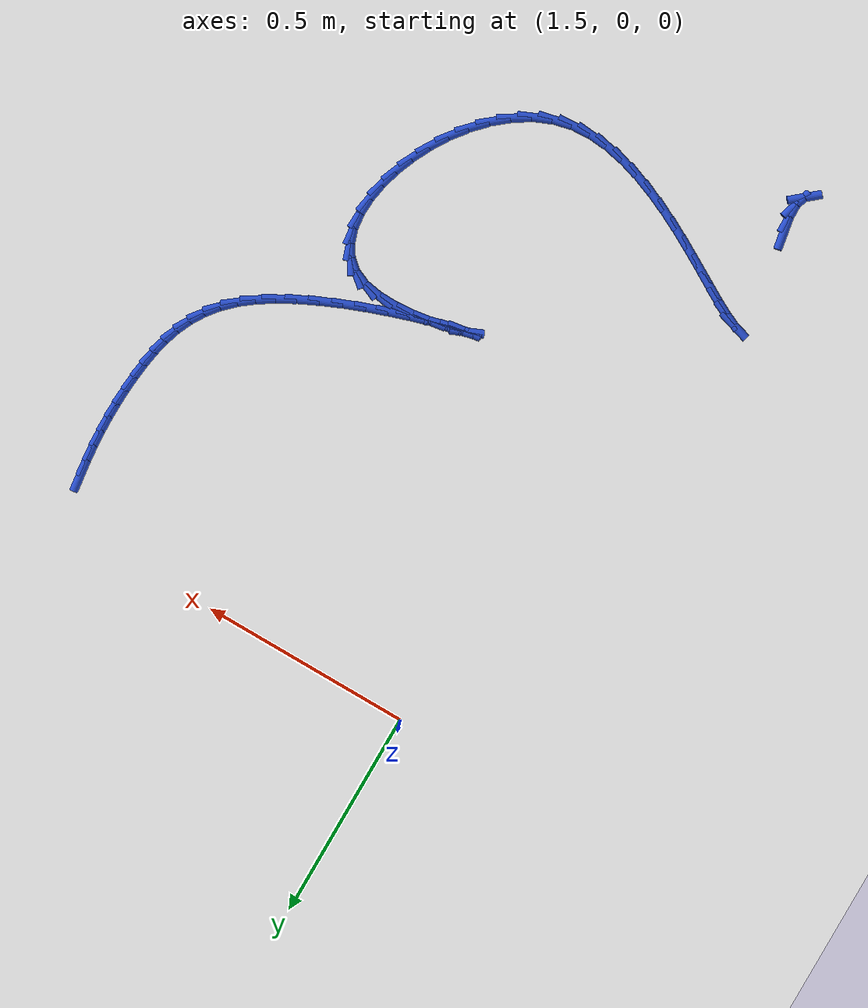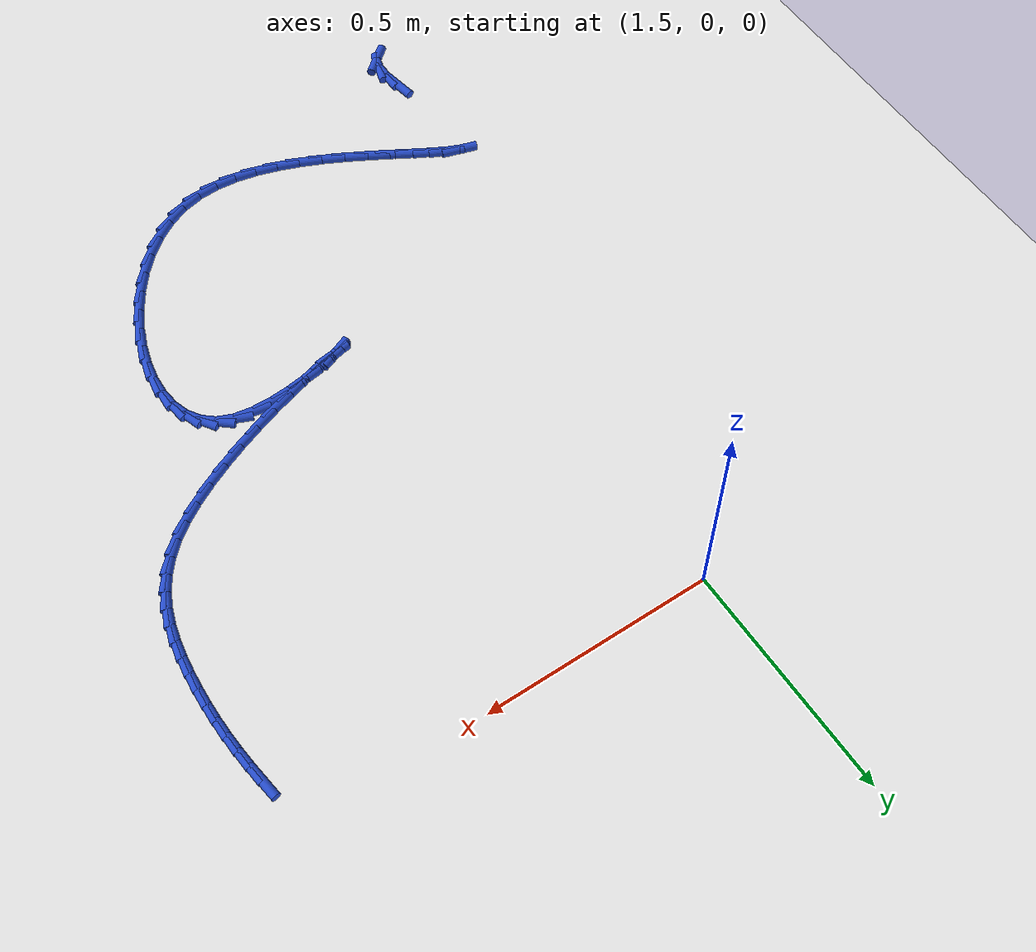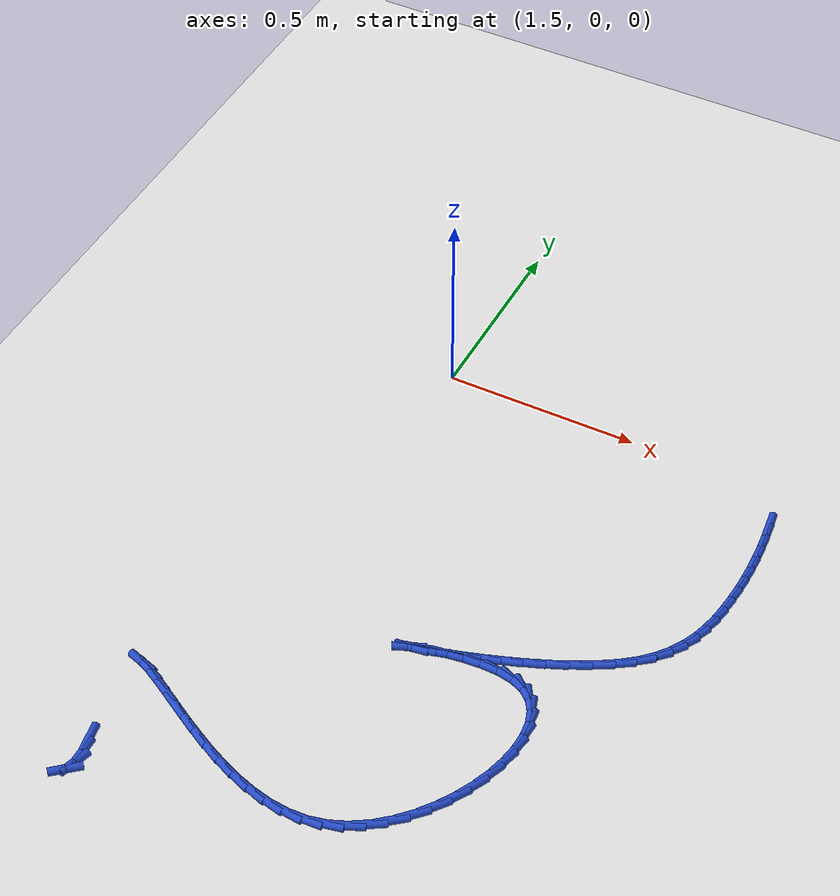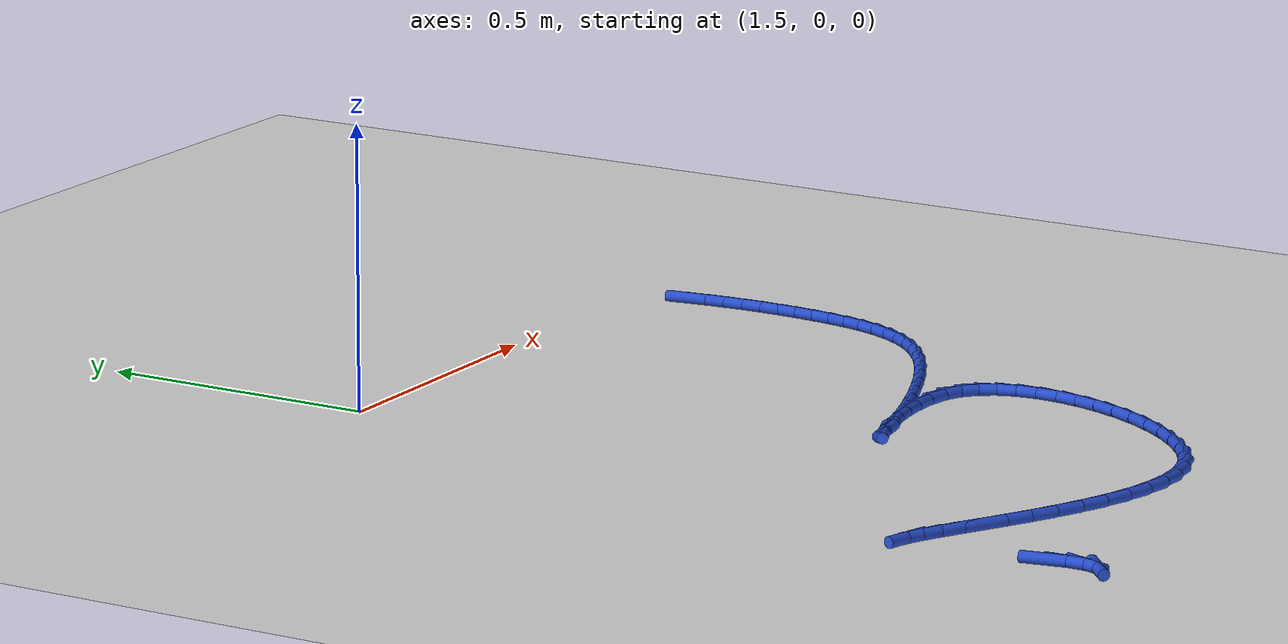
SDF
<sdf version="1.6">
 <world name="default">
  <model name="ground_plane">
   <static>1</static>
   <link name="link">
    <collision name="collision">
     <geometry><plane><normal>0 0 1</normal><size>100 100</size></plane></geometry>
     <surface><friction><ode><mu>100</mu><mu2>50</mu2></ode></friction></surface>
    </collision>
    <visual name="visual">
     <cast_shadows>0</cast_shadows>
     <geometry><plane><normal>0 0 1</normal><size>100 100</size></plane></geometry>
     <material>
      <script><uri>file://media/materials/scripts/gazebo.material</uri><name>Gazebo/WhiteGlow</name></script>
     </material>
    </visual>
   </link>
  </model>
  <model name="line">
   <link name="link_136">
    <pose>2.40849479310458 -0.11308525664974688 0.01 0 1.57 -1.4417393234752054</pose>
    <collision name="collision">
     <geometry><cylinder><radius>0.01</radius><length>0.08</length></cylinder></geometry>
    </collision>
    <visual name="visual">
     <material>
      <script><name>Gazebo/Blue</name><uri>file://media/materials/scripts/gazebo.material</uri></script>
     </material>
     <geometry><cylinder><radius>0.01</radius><length>0.08</length></cylinder></geometry>
    </visual>
   </link>
   <link name="link_137">
    <pose>2.4132801595486213 -0.14995864501461673 0.01 0 1.57 -1.4740188481486598</pose>
    <collision name="collision">
     <geometry><cylinder><radius>0.01</radius><length>0.08</length></cylinder></geometry>
    </collision>
    <visual name="visual">
     <material>
      <script><name>Gazebo/Blue</name><uri>file://media/materials/scripts/gazebo.material</uri></script>
     </material>
     <geometry><cylinder><radius>0.01</radius><length>0.08</length></cylinder></geometry>
    </visual>
   </link>
   <link name="link_138">
    <pose>2.416869411921617 -0.186930468597837 0.01 0 1.57 -1.5069359076529771</pose>
    <collision name="collision">
     <geometry><cylinder><radius>0.01</radius><length>0.08</length></cylinder></geometry>
    </collision>
    <visual name="visual">
     <material>
      <script><name>Gazebo/Blue</name><uri>file://media/materials/scripts/gazebo.material</uri></script>
     </material>
     <geometry><cylinder><radius>0.01</radius><length>0.08</length></cylinder></geometry>
    </visual>
   </link>
   <link name="link_139">
    <pose>2.4192343274577577 -0.22391268487926408 0.01 0 1.57 -1.5406640325195655</pose>
    <collision name="collision">
     <geometry><cylinder><radius>0.01</radius><length>0.08</length></cylinder></geometry>
    </collision>
    <visual name="visual">
     <material>
      <script><name>Gazebo/Blue</name><uri>file://media/materials/scripts/gazebo.material</uri></script>
     </material>
     <geometry><cylinder><radius>0.01</radius><length>0.08</length></cylinder></geometry>
    </visual>
   </link>
   <link name="link_140">
    <pose>2.420346683391234 -0.26081725133875505 0.01 0 1.57 1.5662119387557185</pose>
    <collision name="collision">
     <geometry><cylinder><radius>0.01</radius><length>0.08</length></cylinder></geometry>
    </collision>
    <visual name="visual">
     <material>
      <script><name>Gazebo/Blue</name><uri>file://media/materials/scripts/gazebo.material</uri></script>
     </material>
     <geometry><cylinder><radius>0.01</radius><length>0.08</length></cylinder></geometry>
    </visual>
   </link>
   <link name="link_141">
    <pose>2.420178256956238 -0.29755612545616517 0.01 0 1.57 1.530324374540711</pose>
    <collision name="collision">
     <geometry><cylinder><radius>0.01</radius><length>0.08</length></cylinder></geometry>
    </collision>
    <visual name="visual">
     <material>
      <script><name>Gazebo/Blue</name><uri>file://media/materials/scripts/gazebo.material</uri></script>
     </material>
     <geometry><cylinder><radius>0.01</radius><length>0.08</length></cylinder></geometry>
    </visual>
   </link>
   <link name="link_142">
    <pose>2.418700825386959 -0.33404126471135137 0.01 0 1.57 1.4930783141669577</pose>
    <collision name="collision">
     <geometry><cylinder><radius>0.01</radius><length>0.08</length></cylinder></geometry>
    </collision>
    <visual name="visual">
     <material>
      <script><name>Gazebo/Blue</name><uri>file://media/materials/scripts/gazebo.material</uri></script>
     </material>
     <geometry><cylinder><radius>0.01</radius><length>0.08</length></cylinder></geometry>
    </visual>
   </link>
   <link name="link_143">
    <pose>2.4158861659175894 -0.37018462658417023 0.01 0 1.57 1.4541572576893582</pose>
    <collision name="collision">
     <geometry><cylinder><radius>0.01</radius><length>0.08</length></cylinder></geometry>
    </collision>
    <visual name="visual">
     <material>
      <script><name>Gazebo/Blue</name><uri>file://media/materials/scripts/gazebo.material</uri></script>
     </material>
     <geometry><cylinder><radius>0.01</radius><length>0.08</length></cylinder></geometry>
    </visual>
   </link>
   <link name="link_144">
    <pose>2.411701611229567 -0.4058978827662627 0.01 0 1.57 1.4064403037259792</pose>
    <collision name="collision">
     <geometry><cylinder><radius>0.01</radius><length>0.08</length></cylinder></geometry>
    </collision>
    <visual name="visual">
     <material>
      <script><name>Gazebo/Blue</name><uri>file://media/materials/scripts/gazebo.material</uri></script>
     </material>
     <geometry><cylinder><radius>0.01</radius><length>0.08</length></cylinder></geometry>
    </visual>
   </link>
   <link name="link_145">
    <pose>2.4058671141679975 -0.4410767982324681 0.01 0 1.57 1.339274007909746</pose>
    <collision name="collision">
     <geometry><cylinder><radius>0.01</radius><length>0.08</length></cylinder></geometry>
    </collision>
    <visual name="visual">
     <material>
      <script><name>Gazebo/Blue</name><uri>file://media/materials/scripts/gazebo.material</uri></script>
     </material>
     <geometry><cylinder><radius>0.01</radius><length>0.08</length></cylinder></geometry>
    </visual>
   </link>
   <link name="link_146">
    <pose>2.397729889279376 -0.4755931705937341 0.01 0 1.57 1.2521883463655463</pose>
    <collision name="collision">
     <geometry><cylinder><radius>0.01</radius><length>0.08</length></cylinder></geometry>
    </collision>
    <visual name="visual">
     <material>
      <script><name>Gazebo/Blue</name><uri>file://media/materials/scripts/gazebo.material</uri></script>
     </material>
     <geometry><cylinder><radius>0.01</radius><length>0.08</length></cylinder></geometry>
    </visual>
   </link>
   <link name="link_147">
    <pose>2.386606306428112 -0.5093168141238419 0.01 0 1.57 1.1470999088439977</pose>
    <collision name="collision">
     <geometry><cylinder><radius>0.01</radius><length>0.08</length></cylinder></geometry>
    </collision>
    <visual name="visual">
     <material>
      <script><name>Gazebo/Blue</name><uri>file://media/materials/scripts/gazebo.material</uri></script>
     </material>
     <geometry><cylinder><radius>0.01</radius><length>0.08</length></cylinder></geometry>
    </visual>
   </link>
   <link name="link_148">
    <pose>2.371812735478616 -0.5421175430965762 0.01 0 1.57 1.0280960435964226</pose>
    <collision name="collision">
     <geometry><cylinder><radius>0.01</radius><length>0.08</length></cylinder></geometry>
    </collision>
    <visual name="visual">
     <material>
      <script><name>Gazebo/Blue</name><uri>file://media/materials/scripts/gazebo.material</uri></script>
     </material>
     <geometry><cylinder><radius>0.01</radius><length>0.08</length></cylinder></geometry>
    </visual>
   </link>
   <link name="link_149">
    <pose>2.3526655462952983 -0.5738651717857203 0.01 0 1.57 0.9014054930989835</pose>
    <collision name="collision">
     <geometry><cylinder><radius>0.01</radius><length>0.08</length></cylinder></geometry>
    </collision>
    <visual name="visual">
     <material>
      <script><name>Gazebo/Blue</name><uri>file://media/materials/scripts/gazebo.material</uri></script>
     </material>
     <geometry><cylinder><radius>0.01</radius><length>0.08</length></cylinder></geometry>
    </visual>
   </link>
   <link name="link_150">
    <pose>2.3284811087425683 -0.6044295144650577 0.01 0 1.57 0.7743356110193891</pose>
    <collision name="collision">
     <geometry><cylinder><radius>0.01</radius><length>0.08</length></cylinder></geometry>
    </collision>
    <visual name="visual">
     <material>
      <script><name>Gazebo/Blue</name><uri>file://media/materials/scripts/gazebo.material</uri></script>
     </material>
     <geometry><cylinder><radius>0.01</radius><length>0.08</length></cylinder></geometry>
    </visual>
   </link>
   <link name="link_151">
    <pose>2.2985757926848387 -0.6336803854083722 0.01 0 1.57 0.656129676537569</pose>
    <collision name="collision">
     <geometry><cylinder><radius>0.01</radius><length>0.08</length></cylinder></geometry>
    </collision>
    <visual name="visual">
     <material>
      <script><name>Gazebo/Blue</name><uri>file://media/materials/scripts/gazebo.material</uri></script>
     </material>
     <geometry><cylinder><radius>0.01</radius><length>0.08</length></cylinder></geometry>
    </visual>
   </link>
   <link name="link_152">
    <pose>2.262457754523515 -0.6614884534254639 0.01 0 1.57 0.5640164784935234</pose>
    <collision name="collision">
     <geometry><cylinder><radius>0.01</radius><length>0.08</length></cylinder></geometry>
    </collision>
    <visual name="visual">
     <material>
      <script><name>Gazebo/Blue</name><uri>file://media/materials/scripts/gazebo.material</uri></script>
     </material>
     <geometry><cylinder><radius>0.01</radius><length>0.08</length></cylinder></geometry>
    </visual>
   </link>
   <link name="link_153">
    <pose>2.2209724602161853 -0.687730345925725 0.01 0 1.57 0.49544909977029766</pose>
    <collision name="collision">
     <geometry><cylinder><radius>0.01</radius><length>0.08</length></cylinder></geometry>
    </collision>
    <visual name="visual">
     <material>
      <script><name>Gazebo/Blue</name><uri>file://media/materials/scripts/gazebo.material</uri></script>
     </material>
     <geometry><cylinder><radius>0.01</radius><length>0.08</length></cylinder></geometry>
    </visual>
   </link>
   <link name="link_154">
    <pose>2.1755347884342076 -0.7122852274292342 0.01 0 1.57 0.4427650380241393</pose>
    <collision name="collision">
     <geometry><cylinder><radius>0.01</radius><length>0.08</length></cylinder></geometry>
    </collision>
    <visual name="visual">
     <material>
      <script><name>Gazebo/Blue</name><uri>file://media/materials/scripts/gazebo.material</uri></script>
     </material>
     <geometry><cylinder><radius>0.01</radius><length>0.08</length></cylinder></geometry>
    </visual>
   </link>
   <link name="link_155">
    <pose>2.1275617205263426 -0.7350322718248894 0.01 0 1.57 0.40108536078279394</pose>
    <collision name="collision">
     <geometry><cylinder><radius>0.01</radius><length>0.08</length></cylinder></geometry>
    </collision>
    <visual name="visual">
     <material>
      <script><name>Gazebo/Blue</name><uri>file://media/materials/scripts/gazebo.material</uri></script>
     </material>
     <geometry><cylinder><radius>0.01</radius><length>0.08</length></cylinder></geometry>
    </visual>
   </link>
   <link name="link_156">
    <pose>2.078470237841352 -0.755850653001587 0.01 0 1.57 0.36721642578227237</pose>
    <collision name="collision">
     <geometry><cylinder><radius>0.01</radius><length>0.08</length></cylinder></geometry>
    </collision>
    <visual name="visual">
     <material>
      <script><name>Gazebo/Blue</name><uri>file://media/materials/scripts/gazebo.material</uri></script>
     </material>
     <geometry><cylinder><radius>0.01</radius><length>0.08</length></cylinder></geometry>
    </visual>
   </link>
   <link name="link_157">
    <pose>2.0296773217279966 -0.7746195448482263 0.01 0 1.57 0.33897212539769694</pose>
    <collision name="collision">
     <geometry><cylinder><radius>0.01</radius><length>0.08</length></cylinder></geometry>
    </collision>
    <visual name="visual">
     <material>
      <script><name>Gazebo/Blue</name><uri>file://media/materials/scripts/gazebo.material</uri></script>
     </material>
     <geometry><cylinder><radius>0.01</radius><length>0.08</length></cylinder></geometry>
    </visual>
   </link>
   <link name="link_158">
    <pose>1.982599953535036 -0.7912181212537044 0.01 0 1.57 0.3147538113883472</pose>
    <collision name="collision">
     <geometry><cylinder><radius>0.01</radius><length>0.08</length></cylinder></geometry>
    </collision>
    <visual name="visual">
     <material>
      <script><name>Gazebo/Blue</name><uri>file://media/materials/scripts/gazebo.material</uri></script>
     </material>
     <geometry><cylinder><radius>0.01</radius><length>0.08</length></cylinder></geometry>
    </visual>
   </link>
   <link name="link_159">
    <pose>1.9386551146112307 -0.8055255561069198 0.01 0 1.57 0.2932459359099634</pose>
    <collision name="collision">
     <geometry><cylinder><radius>0.01</radius><length>0.08</length></cylinder></geometry>
    </collision>
    <visual name="visual">
     <material>
      <script><name>Gazebo/Blue</name><uri>file://media/materials/scripts/gazebo.material</uri></script>
     </material>
     <geometry><cylinder><radius>0.01</radius><length>0.08</length></cylinder></geometry>
    </visual>
   </link>
   <link name="link_160">
    <pose>1.8992597863053418 -0.8174210232967702 0.01 0 1.57 0.27308080329887846</pose>
    <collision name="collision">
     <geometry><cylinder><radius>0.01</radius><length>0.08</length></cylinder></geometry>
    </collision>
    <visual name="visual">
     <material>
      <script><name>Gazebo/Blue</name><uri>file://media/materials/scripts/gazebo.material</uri></script>
     </material>
     <geometry><cylinder><radius>0.01</radius><length>0.08</length></cylinder></geometry>
    </visual>
   </link>
   <link name="link_161">
    <pose>1.8658309499661294 -0.8267836967121539 0.01 0 1.57 0.2521103619420087</pose>
    <collision name="collision">
     <geometry><cylinder><radius>0.01</radius><length>0.08</length></cylinder></geometry>
    </collision>
    <visual name="visual">
     <material>
      <script><name>Gazebo/Blue</name><uri>file://media/materials/scripts/gazebo.material</uri></script>
     </material>
     <geometry><cylinder><radius>0.01</radius><length>0.08</length></cylinder></geometry>
    </visual>
   </link>
   <link name="link_162">
    <pose>1.839785586942354 -0.833492750241968 0.01 0 1.57 0.22432064210947966</pose>
    <collision name="collision">
     <geometry><cylinder><radius>0.01</radius><length>0.08</length></cylinder></geometry>
    </collision>
    <visual name="visual">
     <material>
      <script><name>Gazebo/Blue</name><uri>file://media/materials/scripts/gazebo.material</uri></script>
     </material>
     <geometry><cylinder><radius>0.01</radius><length>0.08</length></cylinder></geometry>
    </visual>
   </link>
   <link name="link_163">
    <pose>1.822540678582777 -0.8374273577751112 0.01 0 1.57 0.14683166573517342</pose>
    <collision name="collision">
     <geometry><cylinder><radius>0.01</radius><length>0.08</length></cylinder></geometry>
    </collision>
    <visual name="visual">
     <material>
      <script><name>Gazebo/Blue</name><uri>file://media/materials/scripts/gazebo.material</uri></script>
     </material>
     <geometry><cylinder><radius>0.01</radius><length>0.08</length></cylinder></geometry>
    </visual>
   </link>
   <link name="link_164">
    <pose>1.8155132062361583 -0.838466693200481 0.01 0 1.57 0.4053240802145313</pose>
    <collision name="collision">
     <geometry><cylinder><radius>0.01</radius><length>0.08</length></cylinder></geometry>
    </collision>
    <visual name="visual">
     <material>
      <script><name>Gazebo/Blue</name><uri>file://media/materials/scripts/gazebo.material</uri></script>
     </material>
     <geometry><cylinder><radius>0.01</radius><length>0.08</length></cylinder></geometry>
    </visual>
   </link>
   <link name="link_165">
    <pose>1.8201201512512588 -0.8364899304069753 0.01 0 1.57 0.28007449777799753</pose>
    <collision name="collision">
     <geometry><cylinder><radius>0.01</radius><length>0.08</length></cylinder></geometry>
    </collision>
    <visual name="visual">
     <material>
      <script><name>Gazebo/Blue</name><uri>file://media/materials/scripts/gazebo.material</uri></script>
     </material>
     <geometry><cylinder><radius>0.01</radius><length>0.08</length></cylinder></geometry>
    </visual>
   </link>
   <link name="link_166">
    <pose>1.837416055969233 -0.8315150231079764 0.01 0 1.57 0.23936216308619696</pose>
    <collision name="collision">
     <geometry><cylinder><radius>0.01</radius><length>0.08</length></cylinder></geometry>
    </collision>
    <visual name="visual">
     <material>
      <script><name>Gazebo/Blue</name><uri>file://media/materials/scripts/gazebo.material</uri></script>
     </material>
     <geometry><cylinder><radius>0.01</radius><length>0.08</length></cylinder></geometry>
    </visual>
   </link>
   <link name="link_167">
    <pose>1.8657174186298116 -0.8246083366719351 0.01 0 1.57 0.1978886102756576</pose>
    <collision name="collision">
     <geometry><cylinder><radius>0.01</radius><length>0.08</length></cylinder></geometry>
    </collision>
    <visual name="visual">
     <material>
      <script><name>Gazebo/Blue</name><uri>file://media/materials/scripts/gazebo.material</uri></script>
     </material>
     <geometry><cylinder><radius>0.01</radius><length>0.08</length></cylinder></geometry>
    </visual>
   </link>
   <link name="link_168">
    <pose>1.902089905702884 -0.8173151866074223 0.01 0 1.57 0.14668382087086881</pose>
    <collision name="collision">
     <geometry><cylinder><radius>0.01</radius><length>0.08</length></cylinder></geometry>
    </collision>
    <visual name="visual">
     <material>
      <script><name>Gazebo/Blue</name><uri>file://media/materials/scripts/gazebo.material</uri></script>
     </material>
     <geometry><cylinder><radius>0.01</radius><length>0.08</length></cylinder></geometry>
    </visual>
   </link>
   <link name="link_169">
    <pose>1.9435927589914221 -0.811183348462158 0.01 0 1.57 0.07817767039469287</pose>
    <collision name="collision">
     <geometry><cylinder><radius>0.01</radius><length>0.08</length></cylinder></geometry>
    </collision>
    <visual name="visual">
     <material>
      <script><name>Gazebo/Blue</name><uri>file://media/materials/scripts/gazebo.material</uri></script>
     </material>
     <geometry><cylinder><radius>0.01</radius><length>0.08</length></cylinder></geometry>
    </visual>
   </link>
   <link name="link_170">
    <pose>1.987285220298392 -0.8077605977838607 0.01 0 1.57 -0.019422030484569256</pose>
    <collision name="collision">
     <geometry><cylinder><radius>0.01</radius><length>0.08</length></cylinder></geometry>
    </collision>
    <visual name="visual">
     <material>
      <script><name>Gazebo/Blue</name><uri>file://media/materials/scripts/gazebo.material</uri></script>
     </material>
     <geometry><cylinder><radius>0.01</radius><length>0.08</length></cylinder></geometry>
    </visual>
   </link>
   <link name="link_171">
    <pose>2.0302265314267642 -0.8085947101202504 0.01 0 1.57 -0.1675568427343048</pose>
    <collision name="collision">
     <geometry><cylinder><radius>0.01</radius><length>0.08</length></cylinder></geometry>
    </collision>
    <visual name="visual">
     <material>
      <script><name>Gazebo/Blue</name><uri>file://media/materials/scripts/gazebo.material</uri></script>
     </material>
     <geometry><cylinder><radius>0.01</radius><length>0.08</length></cylinder></geometry>
    </visual>
   </link>
   <link name="link_172">
    <pose>2.0694759341795077 -0.8152334610190464 0.01 0 1.57 -0.40176370715294796</pose>
    <collision name="collision">
     <geometry><cylinder><radius>0.01</radius><length>0.08</length></cylinder></geometry>
    </collision>
    <visual name="visual">
     <material>
      <script><name>Gazebo/Blue</name><uri>file://media/materials/scripts/gazebo.material</uri></script>
     </material>
     <geometry><cylinder><radius>0.01</radius><length>0.08</length></cylinder></geometry>
    </visual>
   </link>
   <link name="link_173">
    <pose>2.1022037192755905 -0.8291386377810878 0.01 0 1.57 -0.7023472451292961</pose>
    <collision name="collision">
     <geometry><cylinder><radius>0.01</radius><length>0.08</length></cylinder></geometry>
    </collision>
    <visual name="visual">
     <material>
      <script><name>Gazebo/Blue</name><uri>file://media/materials/scripts/gazebo.material</uri></script>
     </material>
     <geometry><cylinder><radius>0.01</radius><length>0.08</length></cylinder></geometry>
    </visual>
   </link>
   <link name="link_174">
    <pose>2.127338552550745 -0.8504104692238011 0.01 0 1.57 -0.9969084217736123</pose>
    <collision name="collision">
     <geometry><cylinder><radius>0.01</radius><length>0.08</length></cylinder></geometry>
    </collision>
    <visual name="visual">
     <material>
      <script><name>Gazebo/Blue</name><uri>file://media/materials/scripts/gazebo.material</uri></script>
     </material>
     <geometry><cylinder><radius>0.01</radius><length>0.08</length></cylinder></geometry>
    </visual>
   </link>
   <link name="link_175">
    <pose>2.1452139573781293 -0.878061364119954 0.01 0 1.57 -1.2494621574896874</pose>
    <collision name="collision">
     <geometry><cylinder><radius>0.01</radius><length>0.08</length></cylinder></geometry>
    </collision>
    <visual name="visual">
     <material>
      <script><name>Gazebo/Blue</name><uri>file://media/materials/scripts/gazebo.material</uri></script>
     </material>
     <geometry><cylinder><radius>0.01</radius><length>0.08</length></cylinder></geometry>
    </visual>
   </link>
   <link name="link_176">
    <pose>2.1562026840418076 -0.911073356760315 0.01 0 1.57 -1.4515736753504909</pose>
    <collision name="collision">
     <geometry><cylinder><radius>0.01</radius><length>0.08</length></cylinder></geometry>
    </collision>
    <visual name="visual">
     <material>
      <script><name>Gazebo/Blue</name><uri>file://media/materials/scripts/gazebo.material</uri></script>
     </material>
     <geometry><cylinder><radius>0.01</radius><length>0.08</length></cylinder></geometry>
    </visual>
   </link>
   <link name="link_177">
    <pose>2.1606774828258453 -0.9484284814356537 0.01 0 1.57 1.5298564103494536</pose>
    <collision name="collision">
     <geometry><cylinder><radius>0.01</radius><length>0.08</length></cylinder></geometry>
    </collision>
    <visual name="visual">
     <material>
      <script><name>Gazebo/Blue</name><uri>file://media/materials/scripts/gazebo.material</uri></script>
     </material>
     <geometry><cylinder><radius>0.01</radius><length>0.08</length></cylinder></geometry>
    </visual>
   </link>
   <link name="link_178">
    <pose>2.159011104014308 -0.98910877243674 0.01 0 1.57 1.3995377366692345</pose>
    <collision name="collision">
     <geometry><cylinder><radius>0.01</radius><length>0.08</length></cylinder></geometry>
    </collision>
    <visual name="visual">
     <material>
      <script><name>Gazebo/Blue</name><uri>file://media/materials/scripts/gazebo.material</uri></script>
     </material>
     <geometry><cylinder><radius>0.01</radius><length>0.08</length></cylinder></geometry>
    </visual>
   </link>
   <link name="link_179">
    <pose>2.1515762978912605 -1.032096264054343 0.01 0 1.57 1.2887424055797028</pose>
    <collision name="collision">
     <geometry><cylinder><radius>0.01</radius><length>0.08</length></cylinder></geometry>
    </collision>
    <visual name="visual">
     <material>
      <script><name>Gazebo/Blue</name><uri>file://media/materials/scripts/gazebo.material</uri></script>
     </material>
     <geometry><cylinder><radius>0.01</radius><length>0.08</length></cylinder></geometry>
    </visual>
   </link>
   <link name="link_180">
    <pose>2.1387458147407687 -1.0763729905792323 0.01 0 1.57 1.1896280803943606</pose>
    <collision name="collision">
     <geometry><cylinder><radius>0.01</radius><length>0.08</length></cylinder></geometry>
    </collision>
    <visual name="visual">
     <material>
      <script><name>Gazebo/Blue</name><uri>file://media/materials/scripts/gazebo.material</uri></script>
     </material>
     <geometry><cylinder><radius>0.01</radius><length>0.08</length></cylinder></geometry>
    </visual>
   </link>
   <link name="link_181">
    <pose>2.120892404846897 -1.1209209863021783 0.01 0 1.57 1.0961972413814294</pose>
    <collision name="collision">
     <geometry><cylinder><radius>0.01</radius><length>0.08</length></cylinder></geometry>
    </collision>
    <visual name="visual">
     <material>
      <script><name>Gazebo/Blue</name><uri>file://media/materials/scripts/gazebo.material</uri></script>
     </material>
     <geometry><cylinder><radius>0.01</radius><length>0.08</length></cylinder></geometry>
    </visual>
   </link>
   <link name="link_182">
    <pose>2.098388818493711 -1.1647222855139479 0.01 0 1.57 1.0035521158189777</pose>
    <collision name="collision">
     <geometry><cylinder><radius>0.01</radius><length>0.08</length></cylinder></geometry>
    </collision>
    <visual name="visual">
     <material>
      <script><name>Gazebo/Blue</name><uri>file://media/materials/scripts/gazebo.material</uri></script>
     </material>
     <geometry><cylinder><radius>0.01</radius><length>0.08</length></cylinder></geometry>
    </visual>
   </link>
   <link name="link_183">
    <pose>2.0716078059652765 -1.2067589225053124 0.01 0 1.57 0.9073008359440752</pose>
    <collision name="collision">
     <geometry><cylinder><radius>0.01</radius><length>0.08</length></cylinder></geometry>
    </collision>
    <visual name="visual">
     <material>
      <script><name>Gazebo/Blue</name><uri>file://media/materials/scripts/gazebo.material</uri></script>
     </material>
     <geometry><cylinder><radius>0.01</radius><length>0.08</length></cylinder></geometry>
    </visual>
   </link>
   <link name="link_184">
    <pose>2.040922117545659 -1.2460129315670407 0.01 0 1.57 0.8031339687353768</pose>
    <collision name="collision">
     <geometry><cylinder><radius>0.01</radius><length>0.08</length></cylinder></geometry>
    </collision>
    <visual name="visual">
     <material>
      <script><name>Gazebo/Blue</name><uri>file://media/materials/scripts/gazebo.material</uri></script>
     </material>
     <geometry><cylinder><radius>0.01</radius><length>0.08</length></cylinder></geometry>
    </visual>
   </link>
   <link name="link_185">
    <pose>2.0067045035189235 -1.2814663469899026 0.01 0 1.57 0.6865918611931113</pose>
    <collision name="collision">
     <geometry><cylinder><radius>0.01</radius><length>0.08</length></cylinder></geometry>
    </collision>
    <visual name="visual">
     <material>
      <script><name>Gazebo/Blue</name><uri>file://media/materials/scripts/gazebo.material</uri></script>
     </material>
     <geometry><cylinder><radius>0.01</radius><length>0.08</length></cylinder></geometry>
    </visual>
   </link>
   <link name="link_186">
    <pose>1.9693277141691348 -1.312101203064667 0.01 0 1.57 0.5531436359179744</pose>
    <collision name="collision">
     <geometry><cylinder><radius>0.01</radius><length>0.08</length></cylinder></geometry>
    </collision>
    <visual name="visual">
     <material>
      <script><name>Gazebo/Blue</name><uri>file://media/materials/scripts/gazebo.material</uri></script>
     </material>
     <geometry><cylinder><radius>0.01</radius><length>0.08</length></cylinder></geometry>
    </visual>
   </link>
   <link name="link_187">
    <pose>1.929164499780359 -1.3368995340821044 0.01 0 1.57 0.398856144069729</pose>
    <collision name="collision">
     <geometry><cylinder><radius>0.01</radius><length>0.08</length></cylinder></geometry>
    </collision>
    <visual name="visual">
     <material>
      <script><name>Gazebo/Blue</name><uri>file://media/materials/scripts/gazebo.material</uri></script>
     </material>
     <geometry><cylinder><radius>0.01</radius><length>0.08</length></cylinder></geometry>
    </visual>
   </link>
   <link name="link_188">
    <pose>1.88658761063666 -1.354843374332983 0.01 0 1.57 0.22324474830591085</pose>
    <collision name="collision">
     <geometry><cylinder><radius>0.01</radius><length>0.08</length></cylinder></geometry>
    </collision>
    <visual name="visual">
     <material>
      <script><name>Gazebo/Blue</name><uri>file://media/materials/scripts/gazebo.material</uri></script>
     </material>
     <geometry><cylinder><radius>0.01</radius><length>0.08</length></cylinder></geometry>
    </visual>
   </link>
   <link name="link_189">
    <pose>1.8419733926501696 -1.3649720916759387 0.01 0 1.57 0.05171076277137795</pose>
    <collision name="collision">
     <geometry><cylinder><radius>0.01</radius><length>0.08</length></cylinder></geometry>
    </collision>
    <visual name="visual">
     <material>
      <script><name>Gazebo/Blue</name><uri>file://media/materials/scripts/gazebo.material</uri></script>
     </material>
     <geometry><cylinder><radius>0.01</radius><length>0.08</length></cylinder></geometry>
    </visual>
   </link>
   <link name="link_190">
    <pose>1.7957633346660402 -1.3673637811971069 0.01 0 1.57 -0.09198031042045941</pose>
    <collision name="collision">
     <geometry><cylinder><radius>0.01</radius><length>0.08</length></cylinder></geometry>
    </collision>
    <visual name="visual">
     <material>
      <script><name>Gazebo/Blue</name><uri>file://media/materials/scripts/gazebo.material</uri></script>
     </material>
     <geometry><cylinder><radius>0.01</radius><length>0.08</length></cylinder></geometry>
    </visual>
   </link>
   <link name="link_191">
    <pose>1.748455590878835 -1.3630000871252952 0.01 0 1.57 -0.2079350544988596</pose>
    <collision name="collision">
     <geometry><cylinder><radius>0.01</radius><length>0.08</length></cylinder></geometry>
    </collision>
    <visual name="visual">
     <material>
      <script><name>Gazebo/Blue</name><uri>file://media/materials/scripts/gazebo.material</uri></script>
     </material>
     <geometry><cylinder><radius>0.01</radius><length>0.08</length></cylinder></geometry>
    </visual>
   </link>
   <link name="link_192">
    <pose>1.7005502052562071 -1.3528927867931877 0.01 0 1.57 -0.29981112366139284</pose>
    <collision name="collision">
     <geometry><cylinder><radius>0.01</radius><length>0.08</length></cylinder></geometry>
    </collision>
    <visual name="visual">
     <material>
      <script><name>Gazebo/Blue</name><uri>file://media/materials/scripts/gazebo.material</uri></script>
     </material>
     <geometry><cylinder><radius>0.01</radius><length>0.08</length></cylinder></geometry>
    </visual>
   </link>
   <link name="link_193">
    <pose>1.652547221765813 -1.33805365753347 0.01 0 1.57 -0.37176437336758916</pose>
    <collision name="collision">
     <geometry><cylinder><radius>0.01</radius><length>0.08</length></cylinder></geometry>
    </collision>
    <visual name="visual">
     <material>
      <script><name>Gazebo/Blue</name><uri>file://media/materials/scripts/gazebo.material</uri></script>
     </material>
     <geometry><cylinder><radius>0.01</radius><length>0.08</length></cylinder></geometry>
    </visual>
   </link>
   <link name="link_194">
    <pose>1.6049466843753073 -1.3194944766788275 0.01 0 1.57 -0.4273561351933711</pose>
    <collision name="collision">
     <geometry><cylinder><radius>0.01</radius><length>0.08</length></cylinder></geometry>
    </collision>
    <visual name="visual">
     <material>
      <script><name>Gazebo/Blue</name><uri>file://media/materials/scripts/gazebo.material</uri></script>
     </material>
     <geometry><cylinder><radius>0.01</radius><length>0.08</length></cylinder></geometry>
    </visual>
   </link>
   <link name="link_195">
    <pose>1.5582486370523463 -1.2982270215619445 0.01 0 1.57 -0.4692165789855767</pose>
    <collision name="collision">
     <geometry><cylinder><radius>0.01</radius><length>0.08</length></cylinder></geometry>
    </collision>
    <visual name="visual">
     <material>
      <script><name>Gazebo/Blue</name><uri>file://media/materials/scripts/gazebo.material</uri></script>
     </material>
     <geometry><cylinder><radius>0.01</radius><length>0.08</length></cylinder></geometry>
    </visual>
   </link>
   <link name="link_196">
    <pose>1.512953123764584 -1.2752630695155054 0.01 0 1.57 -0.49898784169779764</pose>
    <collision name="collision">
     <geometry><cylinder><radius>0.01</radius><length>0.08</length></cylinder></geometry>
    </collision>
    <visual name="visual">
     <material>
      <script><name>Gazebo/Blue</name><uri>file://media/materials/scripts/gazebo.material</uri></script>
     </material>
     <geometry><cylinder><radius>0.01</radius><length>0.08</length></cylinder></geometry>
    </visual>
   </link>
   <link name="link_197">
    <pose>1.4695601884796765 -1.251614397872196 0.01 0 1.57 -0.5172788857920264</pose>
    <collision name="collision">
     <geometry><cylinder><radius>0.01</radius><length>0.08</length></cylinder></geometry>
    </collision>
    <visual name="visual">
     <material>
      <script><name>Gazebo/Blue</name><uri>file://media/materials/scripts/gazebo.material</uri></script>
     </material>
     <geometry><cylinder><radius>0.01</radius><length>0.08</length></cylinder></geometry>
    </visual>
   </link>
   <link name="link_198">
    <pose>1.42856987516528 -1.2282927839647015 0.01 0 1.57 -0.5234582732503698</pose>
    <collision name="collision">
     <geometry><cylinder><radius>0.01</radius><length>0.08</length></cylinder></geometry>
    </collision>
    <visual name="visual">
     <material>
      <script><name>Gazebo/Blue</name><uri>file://media/materials/scripts/gazebo.material</uri></script>
     </material>
     <geometry><cylinder><radius>0.01</radius><length>0.08</length></cylinder></geometry>
    </visual>
   </link>
   <link name="link_199">
    <pose>1.3904822277890474 -1.2063100051257047 0.01 0 1.57 -0.5150549768248531</pose>
    <collision name="collision">
     <geometry><cylinder><radius>0.01</radius><length>0.08</length></cylinder></geometry>
    </collision>
    <visual name="visual">
     <material>
      <script><name>Gazebo/Blue</name><uri>file://media/materials/scripts/gazebo.material</uri></script>
     </material>
     <geometry><cylinder><radius>0.01</radius><length>0.08</length></cylinder></geometry>
    </visual>
   </link>
   <link name="link_200">
    <pose>1.3557972903186373 -1.186677838687893 0.01 0 1.57 -0.4862221654622327</pose>
    <collision name="collision">
     <geometry><cylinder><radius>0.01</radius><length>0.08</length></cylinder></geometry>
    </collision>
    <visual name="visual">
     <material>
      <script><name>Gazebo/Blue</name><uri>file://media/materials/scripts/gazebo.material</uri></script>
     </material>
     <geometry><cylinder><radius>0.01</radius><length>0.08</length></cylinder></geometry>
    </visual>
   </link>
   <link name="link_201">
    <pose>1.3250151067217035 -1.1704080619839503 0.01 0 1.57 -0.4236381729677505</pose>
    <collision name="collision">
     <geometry><cylinder><radius>0.01</radius><length>0.08</length></cylinder></geometry>
    </collision>
    <visual name="visual">
     <material>
      <script><name>Gazebo/Blue</name><uri>file://media/materials/scripts/gazebo.material</uri></script>
     </material>
     <geometry><cylinder><radius>0.01</radius><length>0.08</length></cylinder></geometry>
    </visual>
   </link>
   <link name="link_202">
    <pose>1.2986357209659019 -1.1585124523465615 0.01 0 1.57 -0.2943037197062194</pose>
    <collision name="collision">
     <geometry><cylinder><radius>0.01</radius><length>0.08</length></cylinder></geometry>
    </collision>
    <visual name="visual">
     <material>
      <script><name>Gazebo/Blue</name><uri>file://media/materials/scripts/gazebo.material</uri></script>
     </material>
     <geometry><cylinder><radius>0.01</radius><length>0.08</length></cylinder></geometry>
    </visual>
   </link>
   <link name="link_212">
    <pose>1.3083310796507037 -1.3966075015707637 0.01 0 1.57 -1.3941844493523272</pose>
    <collision name="collision">
     <geometry><cylinder><radius>0.01</radius><length>0.08</length></cylinder></geometry>
    </collision>
    <visual name="visual">
     <material>
      <script><name>Gazebo/Blue</name><uri>file://media/materials/scripts/gazebo.material</uri></script>
     </material>
     <geometry><cylinder><radius>0.01</radius><length>0.08</length></cylinder></geometry>
    </visual>
   </link>
   <link name="link_213">
    <pose>1.3150861566142555 -1.4344571430599906 0.01 0 1.57 -1.5524016830237084</pose>
    <collision name="collision">
     <geometry><cylinder><radius>0.01</radius><length>0.08</length></cylinder></geometry>
    </collision>
    <visual name="visual">
     <material>
      <script><name>Gazebo/Blue</name><uri>file://media/materials/scripts/gazebo.material</uri></script>
     </material>
     <geometry><cylinder><radius>0.01</radius><length>0.08</length></cylinder></geometry>
    </visual>
   </link>
   <link name="link_214">
    <pose>1.3156751394976085 -1.4664727917015554 0.01 0 1.57 1.2659464588356508</pose>
    <collision name="collision">
     <geometry><cylinder><radius>0.01</radius><length>0.08</length></cylinder></geometry>
    </collision>
    <visual name="visual">
     <material>
      <script><name>Gazebo/Blue</name><uri>file://media/materials/scripts/gazebo.material</uri></script>
     </material>
     <geometry><cylinder><radius>0.01</radius><length>0.08</length></cylinder></geometry>
    </visual>
   </link>
   <link name="link_215">
    <pose>1.3081553766469476 -1.490370984475992 0.01 0 1.57 0.7035276292121619</pose>
    <collision name="collision">
     <geometry><cylinder><radius>0.01</radius><length>0.08</length></cylinder></geometry>
    </collision>
    <visual name="visual">
     <material>
      <script><name>Gazebo/Blue</name><uri>file://media/materials/scripts/gazebo.material</uri></script>
     </material>
     <geometry><cylinder><radius>0.01</radius><length>0.08</length></cylinder></geometry>
    </visual>
   </link>
  </model>
 </world>
</sdf>
